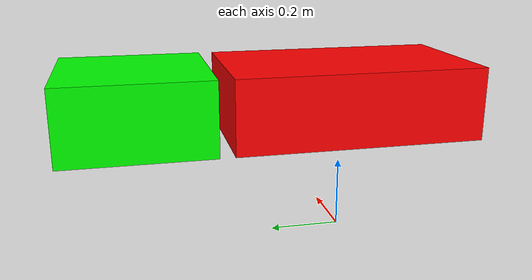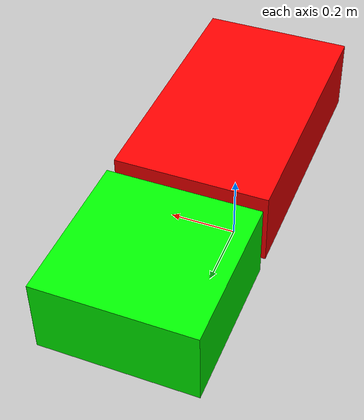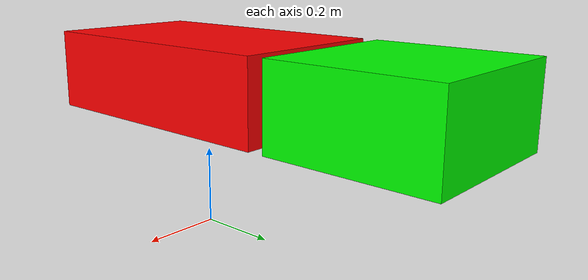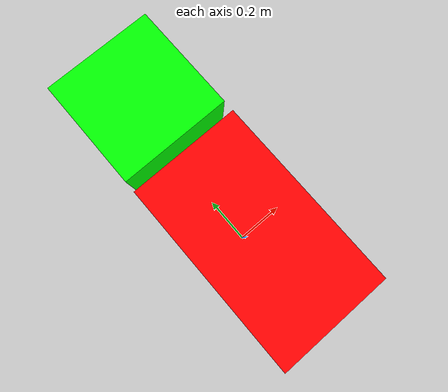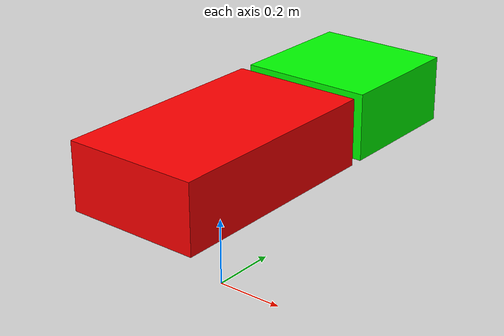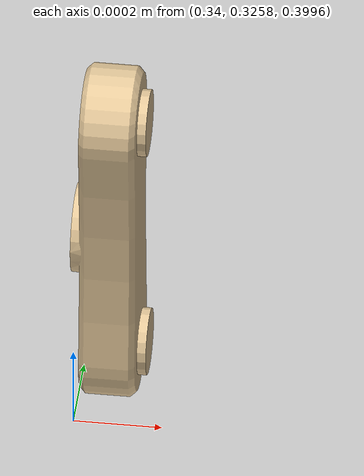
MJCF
<mujoco>

    <default class="thigh">
        <geom rgba="0.89 0.78 0.6 1"/>
    </default>

    <asset>
        <texture type="skybox" builtin="gradient" rgb1="1 1 1" rgb2=".6 .8 1" width="256" height="256"/>
        <mesh name="thigh" file="assets/Thigh.stl" scale="0.00254 0.00254 0.00254"/>
        <mesh name="shin" file="assets/Shin.stl" scale="0.00254 0.00254 0.00254"/>

    </asset>

    <worldbody>
        <light diffuse=".5 .5 .5" pos="0 0 3" dir="0 0 -1"/>
        <!-- Rear Body Section -->
        <body name="rearBody" pos="0 0 0.4">
        <geom  type="box" size="0.2 0.34 0.1" rgba="1 0 0 1"/>
            <!-- Front Body Section -->
            <body name="frontBody" pos = "0 0.58 0">
            <joint type = "hinge" axis = "0 1 0" name = "waist" damping="4" stiffness = "8"/>
            <geom type="box" size="0.2 0.2 0.1" rgba="0 1 0 1"/>
                <!-- Font Right Leg-->
                <!-- Front Right Thigh -->
                <body name = "fr_thigh" pos = "0.22 -0.254 0" zaxis="1 0 0" >
                    <geom type="mesh" class = "thigh" mesh="thigh"/>
                    <joint type="hinge" pos = "0 0.254 0"/>

                    <!-- Front Right Shin -->
                    <body name = "fr_shin" pos = "0 0 0.12" zaxis="0 0 1" >
                        <geom type="mesh" class = "thigh" mesh = "shin" />
                        <joint type="hinge" pos = "0 0 0"/>
                    </body>
                </body>
            </body>

        </body>
    </worldbody>
    <!-- Defining the actuators -->
    <actuator>

    </actuator>
</mujoco>
